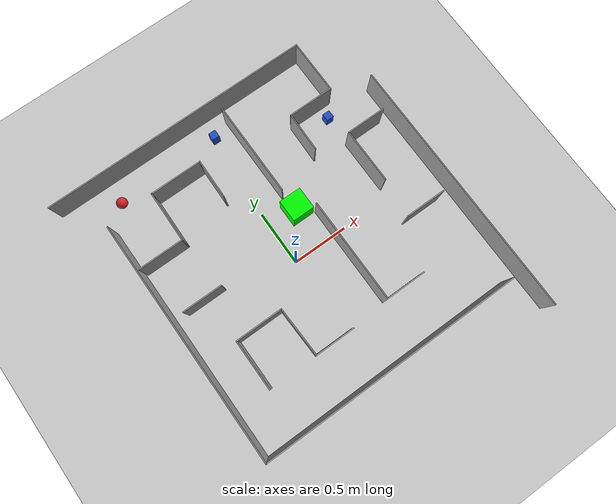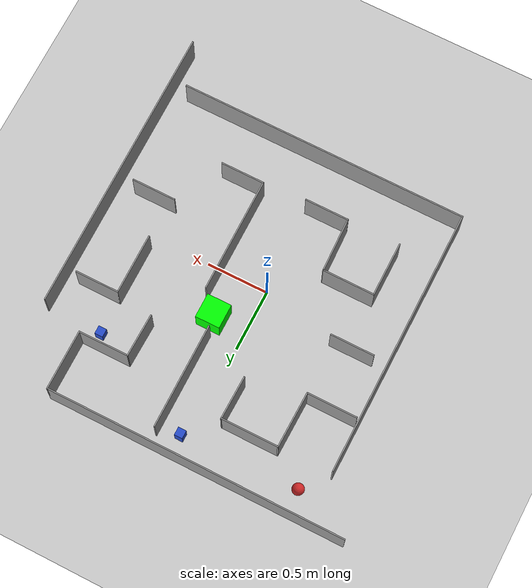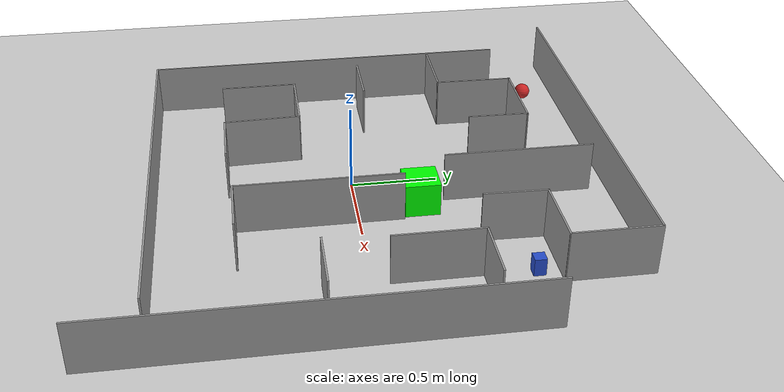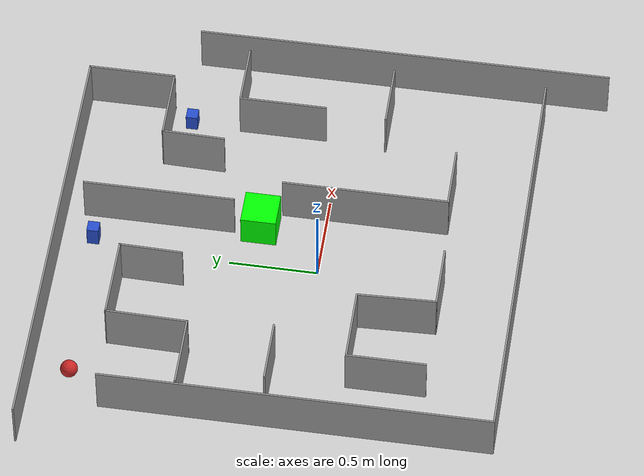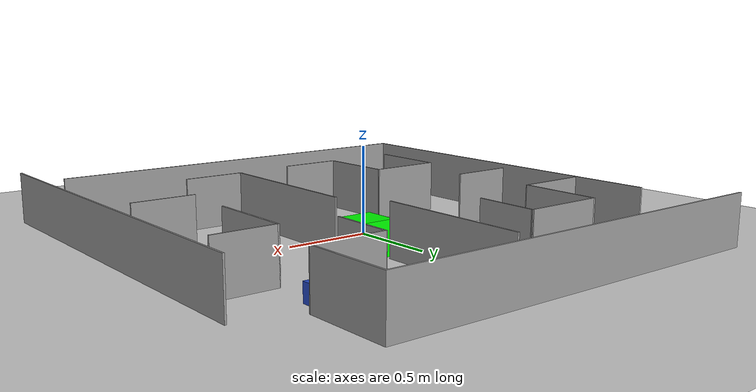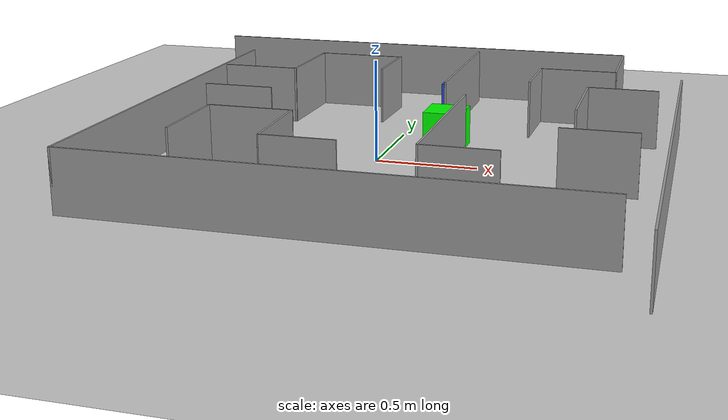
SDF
<sdf version="1.7">
 <world name="default">
  <light name="sun" type="directional">
   <pose>0 0 10 0 -0 0</pose>
   <diffuse>0.8 0.8 0.8 1</diffuse>
   <specular>0.2 0.2 0.2 1</specular>
   <attenuation>
    <range>1000</range>
    <constant>0.9</constant>
    <linear>0.01</linear>
    <quadratic>0.001</quadratic>
   </attenuation>
   <direction>-0.5 0.1 -0.9</direction>
   <spot><inner_angle>0</inner_angle><outer_angle>0</outer_angle><falloff>0</falloff></spot>
  </light>
  <model name="ground_plane">
   <static>1</static>
   <link name="link">
    <collision name="collision">
     <geometry><plane><normal>0 0 1</normal><size>100 100</size></plane></geometry>
     <surface>
      <contact><collide_bitmask>65535</collide_bitmask></contact>
      <friction><ode><mu>100</mu><mu2>50</mu2></ode></friction>
     </surface>
    </collision>
    <visual name="visual">
     <cast_shadows>0</cast_shadows>
     <geometry><plane><normal>0 0 1</normal><size>100 100</size></plane></geometry>
     <material>
      <script><uri>file://media/materials/scripts/gazebo.material</uri><name>Gazebo/Grey</name></script>
     </material>
    </visual>
   </link>
  </model>
  <gravity>0 0 -9.8</gravity>
  <magnetic_field>6e-06 2.3e-05 -4.2e-05</magnetic_field>
  <atmosphere type="adiabatic"/>
  <physics type="ode">
   <max_step_size>0.001</max_step_size>
   <real_time_factor>1</real_time_factor>
   <real_time_update_rate>1000</real_time_update_rate>
  </physics>
  <scene><ambient>0.4 0.4 0.4 1</ambient><background>0.7 0.7 0.7 1</background><shadows>1</shadows></scene>
  <audio><device>default</device></audio>
  <spherical_coordinates>
   <surface_model>EARTH_WGS84</surface_model>
   <latitude_deg>0</latitude_deg>
   <longitude_deg>0</longitude_deg>
   <elevation>0</elevation>
   <heading_deg>0</heading_deg>
  </spherical_coordinates>
  <model name="WorldTask3">
   <model name="WorldTask3">
    <link name="Wall_18">
     <pose>-0.1745 1.47 0 0 -0 0</pose>
     <visual name="Wall_18_Visual">
      <pose>0 0 0.15 0 -0 0</pose>
      <geometry><box><size>2.436 0.01 0.3</size></box></geometry>
      <material>
       <script><uri>file://media/materials/scripts/gazebo.material</uri><name>Gazebo/Grey</name></script>
       <ambient>1 1 1 1</ambient>
       <shader type="pixel"/>
      </material>
      <meta><layer>0</layer></meta>
     </visual>
     <collision name="Wall_18_Collision">
      <pose>0 0 0.15 0 -0 0</pose>
      <geometry><box><size>2.436 0.01 0.3</size></box></geometry>
      <surface>
       <friction>
        <ode><mu>1</mu><mu2>1</mu2><fdir1>0 0 0</fdir1><slip1>0</slip1><slip2>0</slip2></ode>
        <torsional>
         <coefficient>1</coefficient>
         <patch_radius>0</patch_radius>
         <surface_radius>0</surface_radius>
         <use_patch_radius>1</use_patch_radius>
         <ode><slip>0</slip></ode>
        </torsional>
       </friction>
       <bounce><restitution_coefficient>0</restitution_coefficient><threshold>1e+06</threshold></bounce>
       <contact>
        <collide_without_contact>0</collide_without_contact>
        <collide_without_contact_bitmask>1</collide_without_contact_bitmask>
        <collide_bitmask>1</collide_bitmask>
        <ode>
         <soft_cfm>0</soft_cfm>
         <soft_erp>0.2</soft_erp>
         <kp>1e+13</kp>
         <kd>1</kd>
         <max_vel>0.01</max_vel>
         <min_depth>0</min_depth>
        </ode>
        <bullet>
         <split_impulse>1</split_impulse>
         <split_impulse_penetration_threshold>-0.01</split_impulse_penetration_threshold>
         <soft_cfm>0</soft_cfm>
         <soft_erp>0.2</soft_erp>
         <kp>1e+13</kp>
         <kd>1</kd>
        </bullet>
       </contact>
      </surface>
     </collision>
    </link>
    <link name="Wall_19">
     <pose>1.0385 1.227 0 0 0 -1.5708</pose>
     <visual name="Wall_19_Visual">
      <pose>0 0 0.15 0 -0 0</pose>
      <geometry><box><size>0.496 0.01 0.3</size></box></geometry>
      <material>
       <script><uri>file://media/materials/scripts/gazebo.material</uri><name>Gazebo/Grey</name></script>
       <ambient>1 1 1 1</ambient>
       <shader type="pixel"/>
      </material>
      <meta><layer>0</layer></meta>
     </visual>
     <collision name="Wall_19_Collision">
      <pose>0 0 0.15 0 -0 0</pose>
      <geometry><box><size>0.496 0.01 0.3</size></box></geometry>
      <surface>
       <friction>
        <ode><mu>1</mu><mu2>1</mu2><fdir1>0 0 0</fdir1><slip1>0</slip1><slip2>0</slip2></ode>
        <torsional>
         <coefficient>1</coefficient>
         <patch_radius>0</patch_radius>
         <surface_radius>0</surface_radius>
         <use_patch_radius>1</use_patch_radius>
         <ode><slip>0</slip></ode>
        </torsional>
       </friction>
       <bounce><restitution_coefficient>0</restitution_coefficient><threshold>1e+06</threshold></bounce>
       <contact>
        <collide_without_contact>0</collide_without_contact>
        <collide_without_contact_bitmask>1</collide_without_contact_bitmask>
        <collide_bitmask>1</collide_bitmask>
        <ode>
         <soft_cfm>0</soft_cfm>
         <soft_erp>0.2</soft_erp>
         <kp>1e+13</kp>
         <kd>1</kd>
         <max_vel>0.01</max_vel>
         <min_depth>0</min_depth>
        </ode>
        <bullet>
         <split_impulse>1</split_impulse>
         <split_impulse_penetration_threshold>-0.01</split_impulse_penetration_threshold>
         <soft_cfm>0</soft_cfm>
         <soft_erp>0.2</soft_erp>
         <kp>1e+13</kp>
         <kd>1</kd>
        </bullet>
       </contact>
      </surface>
     </collision>
    </link>
    <link name="Wall_20">
     <pose>0.837 0.9835 0 0 0 -3.13911</pose>
     <visual name="Wall_20_Visual">
      <pose>0 0 0.15 0 -0 0</pose>
      <geometry><box><size>0.413001 0.01 0.3</size></box></geometry>
      <material>
       <script><uri>file://media/materials/scripts/gazebo.material</uri><name>Gazebo/Grey</name></script>
       <ambient>1 1 1 1</ambient>
       <shader type="pixel"/>
      </material>
      <meta><layer>0</layer></meta>
     </visual>
     <collision name="Wall_20_Collision">
      <pose>0 0 0.15 0 -0 0</pose>
      <geometry><box><size>0.413001 0.01 0.3</size></box></geometry>
      <surface>
       <friction>
        <ode><mu>1</mu><mu2>1</mu2><fdir1>0 0 0</fdir1><slip1>0</slip1><slip2>0</slip2></ode>
        <torsional>
         <coefficient>1</coefficient>
         <patch_radius>0</patch_radius>
         <surface_radius>0</surface_radius>
         <use_patch_radius>1</use_patch_radius>
         <ode><slip>0</slip></ode>
        </torsional>
       </friction>
       <bounce><restitution_coefficient>0</restitution_coefficient><threshold>1e+06</threshold></bounce>
       <contact>
        <collide_without_contact>0</collide_without_contact>
        <collide_without_contact_bitmask>1</collide_without_contact_bitmask>
        <collide_bitmask>1</collide_bitmask>
        <ode>
         <soft_cfm>0</soft_cfm>
         <soft_erp>0.2</soft_erp>
         <kp>1e+13</kp>
         <kd>1</kd>
         <max_vel>0.01</max_vel>
         <min_depth>0</min_depth>
        </ode>
        <bullet>
         <split_impulse>1</split_impulse>
         <split_impulse_penetration_threshold>-0.01</split_impulse_penetration_threshold>
         <soft_cfm>0</soft_cfm>
         <soft_erp>0.2</soft_erp>
         <kp>1e+13</kp>
         <kd>1</kd>
        </bullet>
       </contact>
      </surface>
     </collision>
    </link>
    <link name="Wall_21">
     <pose>0.6315 0.808 0 0 0 -1.59365</pose>
     <visual name="Wall_21_Visual">
      <pose>0 0 0.15 0 -0 0</pose>
      <geometry><box><size>0.360091 0.01 0.3</size></box></geometry>
      <material>
       <script><uri>file://media/materials/scripts/gazebo.material</uri><name>Gazebo/Grey</name></script>
       <ambient>1 1 1 1</ambient>
       <shader type="pixel"/>
      </material>
      <meta><layer>0</layer></meta>
     </visual>
     <collision name="Wall_21_Collision">
      <pose>0 0 0.15 0 -0 0</pose>
      <geometry><box><size>0.360091 0.01 0.3</size></box></geometry>
      <surface>
       <friction>
        <ode><mu>1</mu><mu2>1</mu2><fdir1>0 0 0</fdir1><slip1>0</slip1><slip2>0</slip2></ode>
        <torsional>
         <coefficient>1</coefficient>
         <patch_radius>0</patch_radius>
         <surface_radius>0</surface_radius>
         <use_patch_radius>1</use_patch_radius>
         <ode><slip>0</slip></ode>
        </torsional>
       </friction>
       <bounce><restitution_coefficient>0</restitution_coefficient><threshold>1e+06</threshold></bounce>
       <contact>
        <collide_without_contact>0</collide_without_contact>
        <collide_without_contact_bitmask>1</collide_without_contact_bitmask>
        <collide_bitmask>1</collide_bitmask>
        <ode>
         <soft_cfm>0</soft_cfm>
         <soft_erp>0.2</soft_erp>
         <kp>1e+13</kp>
         <kd>1</kd>
         <max_vel>0.01</max_vel>
         <min_depth>0</min_depth>
        </ode>
        <bullet>
         <split_impulse>1</split_impulse>
         <split_impulse_penetration_threshold>-0.01</split_impulse_penetration_threshold>
         <soft_cfm>0</soft_cfm>
         <soft_erp>0.2</soft_erp>
         <kp>1e+13</kp>
         <kd>1</kd>
        </bullet>
       </contact>
      </surface>
     </collision>
    </link>
    <link name="Wall_23">
     <pose>1.3875 -0.295 0 0 0 -1.5708</pose>
     <visual name="Wall_23_Visual">
      <pose>0 0 0.15 0 -0 0</pose>
      <geometry><box><size>2.36 0.01 0.3</size></box></geometry>
      <material>
       <script><uri>file://media/materials/scripts/gazebo.material</uri><name>Gazebo/Grey</name></script>
       <ambient>1 1 1 1</ambient>
       <shader type="pixel"/>
      </material>
      <meta><layer>0</layer></meta>
     </visual>
     <collision name="Wall_23_Collision">
      <pose>0 0 0.15 0 -0 0</pose>
      <geometry><box><size>2.36 0.01 0.3</size></box></geometry>
      <surface>
       <friction>
        <ode><mu>1</mu><mu2>1</mu2><fdir1>0 0 0</fdir1><slip1>0</slip1><slip2>0</slip2></ode>
        <torsional>
         <coefficient>1</coefficient>
         <patch_radius>0</patch_radius>
         <surface_radius>0</surface_radius>
         <use_patch_radius>1</use_patch_radius>
         <ode><slip>0</slip></ode>
        </torsional>
       </friction>
       <bounce><restitution_coefficient>0</restitution_coefficient><threshold>1e+06</threshold></bounce>
       <contact>
        <collide_without_contact>0</collide_without_contact>
        <collide_without_contact_bitmask>1</collide_without_contact_bitmask>
        <collide_bitmask>1</collide_bitmask>
        <ode>
         <soft_cfm>0</soft_cfm>
         <soft_erp>0.2</soft_erp>
         <kp>1e+13</kp>
         <kd>1</kd>
         <max_vel>0.01</max_vel>
         <min_depth>0</min_depth>
        </ode>
        <bullet>
         <split_impulse>1</split_impulse>
         <split_impulse_penetration_threshold>-0.01</split_impulse_penetration_threshold>
         <soft_cfm>0</soft_cfm>
         <soft_erp>0.2</soft_erp>
         <kp>1e+13</kp>
         <kd>1</kd>
        </bullet>
       </contact>
      </surface>
     </collision>
    </link>
    <link name="Wall_25">
     <pose>0.0825 -1.124 0 0 -0 0</pose>
     <visual name="Wall_25_Visual">
      <pose>0 0 0.15 0 -0 0</pose>
      <geometry><box><size>2.36 0.01 0.3</size></box></geometry>
      <material>
       <script><uri>file://media/materials/scripts/gazebo.material</uri><name>Gazebo/Grey</name></script>
       <ambient>1 1 1 1</ambient>
       <shader type="pixel"/>
      </material>
      <meta><layer>0</layer></meta>
     </visual>
     <collision name="Wall_25_Collision">
      <pose>0 0 0.15 0 -0 0</pose>
      <geometry><box><size>2.36 0.01 0.3</size></box></geometry>
      <surface>
       <friction>
        <ode><mu>1</mu><mu2>1</mu2><fdir1>0 0 0</fdir1><slip1>0</slip1><slip2>0</slip2></ode>
        <torsional>
         <coefficient>1</coefficient>
         <patch_radius>0</patch_radius>
         <surface_radius>0</surface_radius>
         <use_patch_radius>1</use_patch_radius>
         <ode><slip>0</slip></ode>
        </torsional>
       </friction>
       <bounce><restitution_coefficient>0</restitution_coefficient><threshold>1e+06</threshold></bounce>
       <contact>
        <collide_without_contact>0</collide_without_contact>
        <collide_without_contact_bitmask>1</collide_without_contact_bitmask>
        <collide_bitmask>1</collide_bitmask>
        <ode>
         <soft_cfm>0</soft_cfm>
         <soft_erp>0.2</soft_erp>
         <kp>1e+13</kp>
         <kd>1</kd>
         <max_vel>0.01</max_vel>
         <min_depth>0</min_depth>
        </ode>
        <bullet>
         <split_impulse>1</split_impulse>
         <split_impulse_penetration_threshold>-0.01</split_impulse_penetration_threshold>
         <soft_cfm>0</soft_cfm>
         <soft_erp>0.2</soft_erp>
         <kp>1e+13</kp>
         <kd>1</kd>
        </bullet>
       </contact>
      </surface>
     </collision>
    </link>
    <link name="Wall_27">
     <pose>-1.0925 -0.031 0 0 0 -1.5708</pose>
     <visual name="Wall_27_Visual">
      <pose>0 0 0.15 0 -0 0</pose>
      <geometry><box><size>2.196 0.01 0.3</size></box></geometry>
      <material>
       <script><uri>file://media/materials/scripts/gazebo.material</uri><name>Gazebo/Grey</name></script>
       <ambient>1 1 1 1</ambient>
       <shader type="pixel"/>
      </material>
      <meta><layer>0</layer></meta>
     </visual>
     <collision name="Wall_27_Collision">
      <pose>0 0 0.15 0 -0 0</pose>
      <geometry><box><size>2.196 0.01 0.3</size></box></geometry>
      <surface>
       <friction>
        <ode><mu>1</mu><mu2>1</mu2><fdir1>0 0 0</fdir1><slip1>0</slip1><slip2>0</slip2></ode>
        <torsional>
         <coefficient>1</coefficient>
         <patch_radius>0</patch_radius>
         <surface_radius>0</surface_radius>
         <use_patch_radius>1</use_patch_radius>
         <ode><slip>0</slip></ode>
        </torsional>
       </friction>
       <bounce><restitution_coefficient>0</restitution_coefficient><threshold>1e+06</threshold></bounce>
       <contact>
        <collide_without_contact>0</collide_without_contact>
        <collide_without_contact_bitmask>1</collide_without_contact_bitmask>
        <collide_bitmask>1</collide_bitmask>
        <ode>
         <soft_cfm>0</soft_cfm>
         <soft_erp>0.2</soft_erp>
         <kp>1e+13</kp>
         <kd>1</kd>
         <max_vel>0.01</max_vel>
         <min_depth>0</min_depth>
        </ode>
        <bullet>
         <split_impulse>1</split_impulse>
         <split_impulse_penetration_threshold>-0.01</split_impulse_penetration_threshold>
         <soft_cfm>0</soft_cfm>
         <soft_erp>0.2</soft_erp>
         <kp>1e+13</kp>
         <kd>1</kd>
        </bullet>
       </contact>
      </surface>
     </collision>
    </link>
    <link name="Wall_29">
     <pose>-0.8685 0.631 0 0 -0 0</pose>
     <visual name="Wall_29_Visual">
      <pose>0 0 0.15 0 -0 0</pose>
      <geometry><box><size>0.412 0.01 0.3</size></box></geometry>
      <material>
       <script><uri>file://media/materials/scripts/gazebo.material</uri><name>Gazebo/Grey</name></script>
       <ambient>1 1 1 1</ambient>
       <shader type="pixel"/>
      </material>
      <meta><layer>0</layer></meta>
     </visual>
     <collision name="Wall_29_Collision">
      <pose>0 0 0.15 0 -0 0</pose>
      <geometry><box><size>0.412 0.01 0.3</size></box></geometry>
      <surface>
       <friction>
        <ode><mu>1</mu><mu2>1</mu2><fdir1>0 0 0</fdir1><slip1>0</slip1><slip2>0</slip2></ode>
        <torsional>
         <coefficient>1</coefficient>
         <patch_radius>0</patch_radius>
         <surface_radius>0</surface_radius>
         <use_patch_radius>1</use_patch_radius>
         <ode><slip>0</slip></ode>
        </torsional>
       </friction>
       <bounce><restitution_coefficient>0</restitution_coefficient><threshold>1e+06</threshold></bounce>
       <contact>
        <collide_without_contact>0</collide_without_contact>
        <collide_without_contact_bitmask>1</collide_without_contact_bitmask>
        <collide_bitmask>1</collide_bitmask>
        <ode>
         <soft_cfm>0</soft_cfm>
         <soft_erp>0.2</soft_erp>
         <kp>1e+13</kp>
         <kd>1</kd>
         <max_vel>0.01</max_vel>
         <min_depth>0</min_depth>
        </ode>
        <bullet>
         <split_impulse>1</split_impulse>
         <split_impulse_penetration_threshold>-0.01</split_impulse_penetration_threshold>
         <soft_cfm>0</soft_cfm>
         <soft_erp>0.2</soft_erp>
         <kp>1e+13</kp>
         <kd>1</kd>
        </bullet>
       </contact>
      </surface>
     </collision>
    </link>
    <link name="Wall_33">
     <pose>-0.6635 0.859 0 0 0 -1.58834</pose>
     <visual name="Wall_33_Visual">
      <pose>0 0 0.15 0 -0 0</pose>
      <geometry><box><size>0.466265 0.01 0.3</size></box></geometry>
      <material>
       <script><uri>file://media/materials/scripts/gazebo.material</uri><name>Gazebo/Grey</name></script>
       <ambient>1 1 1 1</ambient>
       <shader type="pixel"/>
      </material>
      <meta><layer>0</layer></meta>
     </visual>
     <collision name="Wall_33_Collision">
      <pose>0 0 0.15 0 -0 0</pose>
      <geometry><box><size>0.466265 0.01 0.3</size></box></geometry>
      <surface>
       <friction>
        <ode><mu>1</mu><mu2>1</mu2><fdir1>0 0 0</fdir1><slip1>0</slip1><slip2>0</slip2></ode>
        <torsional>
         <coefficient>1</coefficient>
         <patch_radius>0</patch_radius>
         <surface_radius>0</surface_radius>
         <use_patch_radius>1</use_patch_radius>
         <ode><slip>0</slip></ode>
        </torsional>
       </friction>
       <bounce><restitution_coefficient>0</restitution_coefficient><threshold>1e+06</threshold></bounce>
       <contact>
        <collide_without_contact>0</collide_without_contact>
        <collide_without_contact_bitmask>1</collide_without_contact_bitmask>
        <collide_bitmask>1</collide_bitmask>
        <ode>
         <soft_cfm>0</soft_cfm>
         <soft_erp>0.2</soft_erp>
         <kp>1e+13</kp>
         <kd>1</kd>
         <max_vel>0.01</max_vel>
         <min_depth>0</min_depth>
        </ode>
        <bullet>
         <split_impulse>1</split_impulse>
         <split_impulse_penetration_threshold>-0.01</split_impulse_penetration_threshold>
         <soft_cfm>0</soft_cfm>
         <soft_erp>0.2</soft_erp>
         <kp>1e+13</kp>
         <kd>1</kd>
        </bullet>
       </contact>
      </surface>
     </collision>
    </link>
    <link name="Wall_36">
     <pose>-0.428 1.087 0 0 -0 3.14159</pose>
     <visual name="Wall_36_Visual">
      <pose>0 0 0.15 0 -0 0</pose>
      <geometry><box><size>0.473 0.01 0.3</size></box></geometry>
      <material>
       <script><uri>file://media/materials/scripts/gazebo.material</uri><name>Gazebo/Grey</name></script>
       <ambient>1 1 1 1</ambient>
       <shader type="pixel"/>
      </material>
      <meta><layer>0</layer></meta>
     </visual>
     <collision name="Wall_36_Collision">
      <pose>0 0 0.15 0 -0 0</pose>
      <geometry><box><size>0.473 0.01 0.3</size></box></geometry>
      <surface>
       <friction>
        <ode><mu>1</mu><mu2>1</mu2><fdir1>0 0 0</fdir1><slip1>0</slip1><slip2>0</slip2></ode>
        <torsional>
         <coefficient>1</coefficient>
         <patch_radius>0</patch_radius>
         <surface_radius>0</surface_radius>
         <use_patch_radius>1</use_patch_radius>
         <ode><slip>0</slip></ode>
        </torsional>
       </friction>
       <bounce><restitution_coefficient>0</restitution_coefficient><threshold>1e+06</threshold></bounce>
       <contact>
        <collide_without_contact>0</collide_without_contact>
        <collide_without_contact_bitmask>1</collide_without_contact_bitmask>
        <collide_bitmask>1</collide_bitmask>
        <ode>
         <soft_cfm>0</soft_cfm>
         <soft_erp>0.2</soft_erp>
         <kp>1e+13</kp>
         <kd>1</kd>
         <max_vel>0.01</max_vel>
         <min_depth>0</min_depth>
        </ode>
        <bullet>
         <split_impulse>1</split_impulse>
         <split_impulse_penetration_threshold>-0.01</split_impulse_penetration_threshold>
         <soft_cfm>0</soft_cfm>
         <soft_erp>0.2</soft_erp>
         <kp>1e+13</kp>
         <kd>1</kd>
        </bullet>
       </contact>
      </surface>
     </collision>
    </link>
    <link name="Wall_38">
     <pose>-0.2 0.912 0 0 0 -1.59079</pose>
     <visual name="Wall_38_Visual">
      <pose>0 0 0.15 0 -0 0</pose>
      <geometry><box><size>0.36007 0.01 0.3</size></box></geometry>
      <material>
       <script><uri>file://media/materials/scripts/gazebo.material</uri><name>Gazebo/Grey</name></script>
       <ambient>1 1 1 1</ambient>
       <shader type="pixel"/>
      </material>
      <meta><layer>0</layer></meta>
     </visual>
     <collision name="Wall_38_Collision">
      <pose>0 0 0.15 0 -0 0</pose>
      <geometry><box><size>0.36007 0.01 0.3</size></box></geometry>
      <surface>
       <friction>
        <ode><mu>1</mu><mu2>1</mu2><fdir1>0 0 0</fdir1><slip1>0</slip1><slip2>0</slip2></ode>
        <torsional>
         <coefficient>1</coefficient>
         <patch_radius>0</patch_radius>
         <surface_radius>0</surface_radius>
         <use_patch_radius>1</use_patch_radius>
         <ode><slip>0</slip></ode>
        </torsional>
       </friction>
       <bounce><restitution_coefficient>0</restitution_coefficient><threshold>1e+06</threshold></bounce>
       <contact>
        <collide_without_contact>0</collide_without_contact>
        <collide_without_contact_bitmask>1</collide_without_contact_bitmask>
        <collide_bitmask>1</collide_bitmask>
        <ode>
         <soft_cfm>0</soft_cfm>
         <soft_erp>0.2</soft_erp>
         <kp>1e+13</kp>
         <kd>1</kd>
         <max_vel>0.01</max_vel>
         <min_depth>0</min_depth>
        </ode>
        <bullet>
         <split_impulse>1</split_impulse>
         <split_impulse_penetration_threshold>-0.01</split_impulse_penetration_threshold>
         <soft_cfm>0</soft_cfm>
         <soft_erp>0.2</soft_erp>
         <kp>1e+13</kp>
         <kd>1</kd>
        </bullet>
       </contact>
      </surface>
     </collision>
    </link>
    <link name="Wall_40">
     <pose>-0.7985 0.154 0 0 -0 3.14159</pose>
     <visual name="Wall_40_Visual">
      <pose>0 0 0.15 0 -0 0</pose>
      <geometry><box><size>0.36 0.01 0.3</size></box></geometry>
      <material>
       <script><uri>file://media/materials/scripts/gazebo.material</uri><name>Gazebo/Grey</name></script>
       <ambient>1 1 1 1</ambient>
       <shader type="pixel"/>
      </material>
      <meta><layer>0</layer></meta>
     </visual>
     <collision name="Wall_40_Collision">
      <pose>0 0 0.15 0 -0 0</pose>
      <geometry><box><size>0.36 0.01 0.3</size></box></geometry>
      <surface>
       <friction>
        <ode><mu>1</mu><mu2>1</mu2><fdir1>0 0 0</fdir1><slip1>0</slip1><slip2>0</slip2></ode>
        <torsional>
         <coefficient>1</coefficient>
         <patch_radius>0</patch_radius>
         <surface_radius>0</surface_radius>
         <use_patch_radius>1</use_patch_radius>
         <ode><slip>0</slip></ode>
        </torsional>
       </friction>
       <bounce><restitution_coefficient>0</restitution_coefficient><threshold>1e+06</threshold></bounce>
       <contact>
        <collide_without_contact>0</collide_without_contact>
        <collide_without_contact_bitmask>1</collide_without_contact_bitmask>
        <collide_bitmask>1</collide_bitmask>
        <ode>
         <soft_cfm>0</soft_cfm>
         <soft_erp>0.2</soft_erp>
         <kp>1e+13</kp>
         <kd>1</kd>
         <max_vel>0.01</max_vel>
         <min_depth>0</min_depth>
        </ode>
        <bullet>
         <split_impulse>1</split_impulse>
         <split_impulse_penetration_threshold>-0.01</split_impulse_penetration_threshold>
         <soft_cfm>0</soft_cfm>
         <soft_erp>0.2</soft_erp>
         <kp>1e+13</kp>
         <kd>1</kd>
        </bullet>
       </contact>
      </surface>
     </collision>
    </link>
    <link name="Wall_42">
     <pose>-0.7675 -0.4875 0 0 -0 1.5708</pose>
     <visual name="Wall_42_Visual">
      <pose>0 0 0.15 0 -0 0</pose>
      <geometry><box><size>0.451 0.01 0.3</size></box></geometry>
      <material>
       <script><uri>file://media/materials/scripts/gazebo.material</uri><name>Gazebo/Grey</name></script>
       <ambient>1 1 1 1</ambient>
       <shader type="pixel"/>
      </material>
      <meta><layer>0</layer></meta>
     </visual>
     <collision name="Wall_42_Collision">
      <pose>0 0 0.15 0 -0 0</pose>
      <geometry><box><size>0.451 0.01 0.3</size></box></geometry>
      <surface>
       <friction>
        <ode><mu>1</mu><mu2>1</mu2><fdir1>0 0 0</fdir1><slip1>0</slip1><slip2>0</slip2></ode>
        <torsional>
         <coefficient>1</coefficient>
         <patch_radius>0</patch_radius>
         <surface_radius>0</surface_radius>
         <use_patch_radius>1</use_patch_radius>
         <ode><slip>0</slip></ode>
        </torsional>
       </friction>
       <bounce><restitution_coefficient>0</restitution_coefficient><threshold>1e+06</threshold></bounce>
       <contact>
        <collide_without_contact>0</collide_without_contact>
        <collide_without_contact_bitmask>1</collide_without_contact_bitmask>
        <collide_bitmask>1</collide_bitmask>
        <ode>
         <soft_cfm>0</soft_cfm>
         <soft_erp>0.2</soft_erp>
         <kp>1e+13</kp>
         <kd>1</kd>
         <max_vel>0.01</max_vel>
         <min_depth>0</min_depth>
        </ode>
        <bullet>
         <split_impulse>1</split_impulse>
         <split_impulse_penetration_threshold>-0.01</split_impulse_penetration_threshold>
         <soft_cfm>0</soft_cfm>
         <soft_erp>0.2</soft_erp>
         <kp>1e+13</kp>
         <kd>1</kd>
        </bullet>
       </contact>
      </surface>
     </collision>
    </link>
    <link name="Wall_44">
     <pose>-0.5585 -0.267 0 0 -0 3.14159</pose>
     <visual name="Wall_44_Visual">
      <pose>0 0 0.15 0 -0 0</pose>
      <geometry><box><size>0.428 0.01 0.3</size></box></geometry>
      <material>
       <script><uri>file://media/materials/scripts/gazebo.material</uri><name>Gazebo/Grey</name></script>
       <ambient>1 1 1 1</ambient>
       <shader type="pixel"/>
      </material>
      <meta><layer>0</layer></meta>
     </visual>
     <collision name="Wall_44_Collision">
      <pose>0 0 0.15 0 -0 0</pose>
      <geometry><box><size>0.428 0.01 0.3</size></box></geometry>
      <surface>
       <friction>
        <ode><mu>1</mu><mu2>1</mu2><fdir1>0 0 0</fdir1><slip1>0</slip1><slip2>0</slip2></ode>
        <torsional>
         <coefficient>1</coefficient>
         <patch_radius>0</patch_radius>
         <surface_radius>0</surface_radius>
         <use_patch_radius>1</use_patch_radius>
         <ode><slip>0</slip></ode>
        </torsional>
       </friction>
       <bounce><restitution_coefficient>0</restitution_coefficient><threshold>1e+06</threshold></bounce>
       <contact>
        <collide_without_contact>0</collide_without_contact>
        <collide_without_contact_bitmask>1</collide_without_contact_bitmask>
        <collide_bitmask>1</collide_bitmask>
        <ode>
         <soft_cfm>0</soft_cfm>
         <soft_erp>0.2</soft_erp>
         <kp>1e+13</kp>
         <kd>1</kd>
         <max_vel>0.01</max_vel>
         <min_depth>0</min_depth>
        </ode>
        <bullet>
         <split_impulse>1</split_impulse>
         <split_impulse_penetration_threshold>-0.01</split_impulse_penetration_threshold>
         <soft_cfm>0</soft_cfm>
         <soft_erp>0.2</soft_erp>
         <kp>1e+13</kp>
         <kd>1</kd>
        </bullet>
       </contact>
      </surface>
     </collision>
    </link>
    <link name="Wall_46">
     <pose>-0.342 -0.4875 0 0 -0 1.6048</pose>
     <visual name="Wall_46_Visual">
      <pose>0 0 0.15 0 -0 0</pose>
      <geometry><box><size>0.451255 0.01 0.3</size></box></geometry>
      <material>
       <script><uri>file://media/materials/scripts/gazebo.material</uri><name>Gazebo/Grey</name></script>
       <ambient>1 1 1 1</ambient>
       <shader type="pixel"/>
      </material>
      <meta><layer>0</layer></meta>
     </visual>
     <collision name="Wall_46_Collision">
      <pose>0 0 0.15 0 -0 0</pose>
      <geometry><box><size>0.451255 0.01 0.3</size></box></geometry>
      <surface>
       <friction>
        <ode><mu>1</mu><mu2>1</mu2><fdir1>0 0 0</fdir1><slip1>0</slip1><slip2>0</slip2></ode>
        <torsional>
         <coefficient>1</coefficient>
         <patch_radius>0</patch_radius>
         <surface_radius>0</surface_radius>
         <use_patch_radius>1</use_patch_radius>
         <ode><slip>0</slip></ode>
        </torsional>
       </friction>
       <bounce><restitution_coefficient>0</restitution_coefficient><threshold>1e+06</threshold></bounce>
       <contact>
        <collide_without_contact>0</collide_without_contact>
        <collide_without_contact_bitmask>1</collide_without_contact_bitmask>
        <collide_bitmask>1</collide_bitmask>
        <ode>
         <soft_cfm>0</soft_cfm>
         <soft_erp>0.2</soft_erp>
         <kp>1e+13</kp>
         <kd>1</kd>
         <max_vel>0.01</max_vel>
         <min_depth>0</min_depth>
        </ode>
        <bullet>
         <split_impulse>1</split_impulse>
         <split_impulse_penetration_threshold>-0.01</split_impulse_penetration_threshold>
         <soft_cfm>0</soft_cfm>
         <soft_erp>0.2</soft_erp>
         <kp>1e+13</kp>
         <kd>1</kd>
        </bullet>
       </contact>
      </surface>
     </collision>
    </link>
    <link name="Wall_48">
     <pose>-0.1595 -0.708 0 0 -0 3.14159</pose>
     <visual name="Wall_48_Visual">
      <pose>0 0 0.15 0 -0 0</pose>
      <geometry><box><size>0.36 0.01 0.3</size></box></geometry>
      <material>
       <script><uri>file://media/materials/scripts/gazebo.material</uri><name>Gazebo/Grey</name></script>
       <ambient>1 1 1 1</ambient>
       <shader type="pixel"/>
      </material>
      <meta><layer>0</layer></meta>
     </visual>
     <collision name="Wall_48_Collision">
      <pose>0 0 0.15 0 -0 0</pose>
      <geometry><box><size>0.36 0.01 0.3</size></box></geometry>
      <surface>
       <friction>
        <ode><mu>1</mu><mu2>1</mu2><fdir1>0 0 0</fdir1><slip1>0</slip1><slip2>0</slip2></ode>
        <torsional>
         <coefficient>1</coefficient>
         <patch_radius>0</patch_radius>
         <surface_radius>0</surface_radius>
         <use_patch_radius>1</use_patch_radius>
         <ode><slip>0</slip></ode>
        </torsional>
       </friction>
       <bounce><restitution_coefficient>0</restitution_coefficient><threshold>1e+06</threshold></bounce>
       <contact>
        <collide_without_contact>0</collide_without_contact>
        <collide_without_contact_bitmask>1</collide_without_contact_bitmask>
        <collide_bitmask>1</collide_bitmask>
        <ode>
         <soft_cfm>0</soft_cfm>
         <soft_erp>0.2</soft_erp>
         <kp>1e+13</kp>
         <kd>1</kd>
         <max_vel>0.01</max_vel>
         <min_depth>0</min_depth>
        </ode>
        <bullet>
         <split_impulse>1</split_impulse>
         <split_impulse_penetration_threshold>-0.01</split_impulse_penetration_threshold>
         <soft_cfm>0</soft_cfm>
         <soft_erp>0.2</soft_erp>
         <kp>1e+13</kp>
         <kd>1</kd>
        </bullet>
       </contact>
      </surface>
     </collision>
    </link>
    <link name="Wall_50">
     <pose>0.2075 0.935 0 0 -0 1.5708</pose>
     <visual name="Wall_50_Visual">
      <pose>0 0 0.15 0 -0 0</pose>
      <geometry><box><size>0.86 0.01 0.3</size></box></geometry>
      <material>
       <script><uri>file://media/materials/scripts/gazebo.material</uri><name>Gazebo/Grey</name></script>
       <ambient>1 1 1 1</ambient>
       <shader type="pixel"/>
      </material>
      <meta><layer>0</layer></meta>
     </visual>
     <collision name="Wall_50_Collision">
      <pose>0 0 0.15 0 -0 0</pose>
      <geometry><box><size>0.86 0.01 0.3</size></box></geometry>
      <surface>
       <friction>
        <ode><mu>1</mu><mu2>1</mu2><fdir1>0 0 0</fdir1><slip1>0</slip1><slip2>0</slip2></ode>
        <torsional>
         <coefficient>1</coefficient>
         <patch_radius>0</patch_radius>
         <surface_radius>0</surface_radius>
         <use_patch_radius>1</use_patch_radius>
         <ode><slip>0</slip></ode>
        </torsional>
       </friction>
       <bounce><restitution_coefficient>0</restitution_coefficient><threshold>1e+06</threshold></bounce>
       <contact>
        <collide_without_contact>0</collide_without_contact>
        <collide_without_contact_bitmask>1</collide_without_contact_bitmask>
        <collide_bitmask>1</collide_bitmask>
        <ode>
         <soft_cfm>0</soft_cfm>
         <soft_erp>0.2</soft_erp>
         <kp>1e+13</kp>
         <kd>1</kd>
         <max_vel>0.01</max_vel>
         <min_depth>0</min_depth>
        </ode>
        <bullet>
         <split_impulse>1</split_impulse>
         <split_impulse_penetration_threshold>-0.01</split_impulse_penetration_threshold>
         <soft_cfm>0</soft_cfm>
         <soft_erp>0.2</soft_erp>
         <kp>1e+13</kp>
         <kd>1</kd>
        </bullet>
       </contact>
      </surface>
     </collision>
    </link>
    <link name="Wall_52">
     <pose>0.3665 -0.214 0 0 0 -1.5708</pose>
     <visual name="Wall_52_Visual">
      <pose>0 0 0.15 0 -0 0</pose>
      <geometry><box><size>0.944 0.01 0.3</size></box></geometry>
      <material>
       <script><uri>file://media/materials/scripts/gazebo.material</uri><name>Gazebo/Grey</name></script>
       <ambient>1 1 1 1</ambient>
       <shader type="pixel"/>
      </material>
      <meta><layer>0</layer></meta>
     </visual>
     <collision name="Wall_52_Collision">
      <pose>0 0 0.15 0 -0 0</pose>
      <geometry><box><size>0.944 0.01 0.3</size></box></geometry>
      <surface>
       <friction>
        <ode><mu>1</mu><mu2>1</mu2><fdir1>0 0 0</fdir1><slip1>0</slip1><slip2>0</slip2></ode>
        <torsional>
         <coefficient>1</coefficient>
         <patch_radius>0</patch_radius>
         <surface_radius>0</surface_radius>
         <use_patch_radius>1</use_patch_radius>
         <ode><slip>0</slip></ode>
        </torsional>
       </friction>
       <bounce><restitution_coefficient>0</restitution_coefficient><threshold>1e+06</threshold></bounce>
       <contact>
        <collide_without_contact>0</collide_without_contact>
        <collide_without_contact_bitmask>1</collide_without_contact_bitmask>
        <collide_bitmask>1</collide_bitmask>
        <ode>
         <soft_cfm>0</soft_cfm>
         <soft_erp>0.2</soft_erp>
         <kp>1e+13</kp>
         <kd>1</kd>
         <max_vel>0.01</max_vel>
         <min_depth>0</min_depth>
        </ode>
        <bullet>
         <split_impulse>1</split_impulse>
         <split_impulse_penetration_threshold>-0.01</split_impulse_penetration_threshold>
         <soft_cfm>0</soft_cfm>
         <soft_erp>0.2</soft_erp>
         <kp>1e+13</kp>
         <kd>1</kd>
        </bullet>
       </contact>
      </surface>
     </collision>
    </link>
    <link name="Wall_54">
     <pose>0.5415 -0.681 0 0 -0 3.14159</pose>
     <visual name="Wall_54_Visual">
      <pose>0 0 0.15 0 -0 0</pose>
      <geometry><box><size>0.36 0.01 0.3</size></box></geometry>
      <material>
       <script><uri>file://media/materials/scripts/gazebo.material</uri><name>Gazebo/Grey</name></script>
       <ambient>1 1 1 1</ambient>
       <shader type="pixel"/>
      </material>
      <meta><layer>0</layer></meta>
     </visual>
     <collision name="Wall_54_Collision">
      <pose>0 0 0.15 0 -0 0</pose>
      <geometry><box><size>0.36 0.01 0.3</size></box></geometry>
      <surface>
       <friction>
        <ode><mu>1</mu><mu2>1</mu2><fdir1>0 0 0</fdir1><slip1>0</slip1><slip2>0</slip2></ode>
        <torsional>
         <coefficient>1</coefficient>
         <patch_radius>0</patch_radius>
         <surface_radius>0</surface_radius>
         <use_patch_radius>1</use_patch_radius>
         <ode><slip>0</slip></ode>
        </torsional>
       </friction>
       <bounce><restitution_coefficient>0</restitution_coefficient><threshold>1e+06</threshold></bounce>
       <contact>
        <collide_without_contact>0</collide_without_contact>
        <collide_without_contact_bitmask>1</collide_without_contact_bitmask>
        <collide_bitmask>1</collide_bitmask>
        <ode>
         <soft_cfm>0</soft_cfm>
         <soft_erp>0.2</soft_erp>
         <kp>1e+13</kp>
         <kd>1</kd>
         <max_vel>0.01</max_vel>
         <min_depth>0</min_depth>
        </ode>
        <bullet>
         <split_impulse>1</split_impulse>
         <split_impulse_penetration_threshold>-0.01</split_impulse_penetration_threshold>
         <soft_cfm>0</soft_cfm>
         <soft_erp>0.2</soft_erp>
         <kp>1e+13</kp>
         <kd>1</kd>
        </bullet>
       </contact>
      </surface>
     </collision>
    </link>
    <link name="Wall_56">
     <pose>1.0785 -0.254 0 0 -0 0</pose>
     <visual name="Wall_56_Visual">
      <pose>0 0 0.15 0 -0 0</pose>
      <geometry><box><size>0.36 0.01 0.3</size></box></geometry>
      <material>
       <script><uri>file://media/materials/scripts/gazebo.material</uri><name>Gazebo/Grey</name></script>
       <ambient>1 1 1 1</ambient>
       <shader type="pixel"/>
      </material>
      <meta><layer>0</layer></meta>
     </visual>
     <collision name="Wall_56_Collision">
      <pose>0 0 0.15 0 -0 0</pose>
      <geometry><box><size>0.36 0.01 0.3</size></box></geometry>
      <surface>
       <friction>
        <ode><mu>1</mu><mu2>1</mu2><fdir1>0 0 0</fdir1><slip1>0</slip1><slip2>0</slip2></ode>
        <torsional>
         <coefficient>1</coefficient>
         <patch_radius>0</patch_radius>
         <surface_radius>0</surface_radius>
         <use_patch_radius>1</use_patch_radius>
         <ode><slip>0</slip></ode>
        </torsional>
       </friction>
       <bounce><restitution_coefficient>0</restitution_coefficient><threshold>1e+06</threshold></bounce>
       <contact>
        <collide_without_contact>0</collide_without_contact>
        <collide_without_contact_bitmask>1</collide_without_contact_bitmask>
        <collide_bitmask>1</collide_bitmask>
        <ode>
         <soft_cfm>0</soft_cfm>
         <soft_erp>0.2</soft_erp>
         <kp>1e+13</kp>
         <kd>1</kd>
         <max_vel>0.01</max_vel>
         <min_depth>0</min_depth>
        </ode>
        <bullet>
         <split_impulse>1</split_impulse>
         <split_impulse_penetration_threshold>-0.01</split_impulse_penetration_threshold>
         <soft_cfm>0</soft_cfm>
         <soft_erp>0.2</soft_erp>
         <kp>1e+13</kp>
         <kd>1</kd>
        </bullet>
       </contact>
      </surface>
     </collision>
    </link>
    <link name="Wall_59">
     <pose>1.1085 0.585 0 0 -0 0</pose>
     <visual name="Wall_59_Visual">
      <pose>0 0 0.15 0 -0 0</pose>
      <geometry><box><size>0.36 0.01 0.3</size></box></geometry>
      <material>
       <script><uri>file://media/materials/scripts/gazebo.material</uri><name>Gazebo/Grey</name></script>
       <ambient>1 1 1 1</ambient>
       <shader type="pixel"/>
      </material>
      <meta><layer>0</layer></meta>
     </visual>
     <collision name="Wall_59_Collision">
      <pose>0 0 0.15 0 -0 0</pose>
      <geometry><box><size>0.36 0.01 0.3</size></box></geometry>
      <surface>
       <friction>
        <ode><mu>1</mu><mu2>1</mu2><fdir1>0 0 0</fdir1><slip1>0</slip1><slip2>0</slip2></ode>
        <torsional>
         <coefficient>1</coefficient>
         <patch_radius>0</patch_radius>
         <surface_radius>0</surface_radius>
         <use_patch_radius>1</use_patch_radius>
         <ode><slip>0</slip></ode>
        </torsional>
       </friction>
       <bounce><restitution_coefficient>0</restitution_coefficient><threshold>1e+06</threshold></bounce>
       <contact>
        <collide_without_contact>0</collide_without_contact>
        <collide_without_contact_bitmask>1</collide_without_contact_bitmask>
        <collide_bitmask>1</collide_bitmask>
        <ode>
         <soft_cfm>0</soft_cfm>
         <soft_erp>0.2</soft_erp>
         <kp>1e+13</kp>
         <kd>1</kd>
         <max_vel>0.01</max_vel>
         <min_depth>0</min_depth>
        </ode>
        <bullet>
         <split_impulse>1</split_impulse>
         <split_impulse_penetration_threshold>-0.01</split_impulse_penetration_threshold>
         <soft_cfm>0</soft_cfm>
         <soft_erp>0.2</soft_erp>
         <kp>1e+13</kp>
         <kd>1</kd>
        </bullet>
       </contact>
      </surface>
     </collision>
    </link>
    <link name="Wall_61">
     <pose>0.9335 0.3395 0 0 -0 1.5708</pose>
     <visual name="Wall_61_Visual">
      <pose>0 0 0.15 0 -0 0</pose>
      <geometry><box><size>0.501 0.01 0.3</size></box></geometry>
      <material>
       <script><uri>file://media/materials/scripts/gazebo.material</uri><name>Gazebo/Grey</name></script>
       <ambient>1 1 1 1</ambient>
       <shader type="pixel"/>
      </material>
      <meta><layer>0</layer></meta>
     </visual>
     <collision name="Wall_61_Collision">
      <pose>0 0 0.15 0 -0 0</pose>
      <geometry><box><size>0.501 0.01 0.3</size></box></geometry>
      <surface>
       <friction>
        <ode><mu>1</mu><mu2>1</mu2><fdir1>0 0 0</fdir1><slip1>0</slip1><slip2>0</slip2></ode>
        <torsional>
         <coefficient>1</coefficient>
         <patch_radius>0</patch_radius>
         <surface_radius>0</surface_radius>
         <use_patch_radius>1</use_patch_radius>
         <ode><slip>0</slip></ode>
        </torsional>
       </friction>
       <bounce><restitution_coefficient>0</restitution_coefficient><threshold>1e+06</threshold></bounce>
       <contact>
        <collide_without_contact>0</collide_without_contact>
        <collide_without_contact_bitmask>1</collide_without_contact_bitmask>
        <collide_bitmask>1</collide_bitmask>
        <ode>
         <soft_cfm>0</soft_cfm>
         <soft_erp>0.2</soft_erp>
         <kp>1e+13</kp>
         <kd>1</kd>
         <max_vel>0.01</max_vel>
         <min_depth>0</min_depth>
        </ode>
        <bullet>
         <split_impulse>1</split_impulse>
         <split_impulse_penetration_threshold>-0.01</split_impulse_penetration_threshold>
         <soft_cfm>0</soft_cfm>
         <soft_erp>0.2</soft_erp>
         <kp>1e+13</kp>
         <kd>1</kd>
        </bullet>
       </contact>
      </surface>
     </collision>
    </link>
    <link name="link_0">
     <inertial>
      <mass>0.00389376</mass>
      <inertia>
       <ixx>9.63586e-06</ixx>
       <ixy>0</ixy>
       <ixz>0</ixz>
       <iyy>9.63586e-06</iyy>
       <iyz>0</iyz>
       <izz>9.63586e-06</izz>
      </inertia>
     </inertial>
     <pose>-0.913358 1.25404 0.064873 0 -0 0</pose>
     <visual name="visual">
      <geometry><sphere><radius>0.0486558</radius></sphere></geometry>
      <material>
       <lighting>1</lighting>
       <script><uri>file://media/materials/scripts/gazebo.material</uri><name>Gazebo/Red</name></script>
       <shader type="pixel"/>
      </material>
     </visual>
     <collision name="collision">
      <geometry><sphere><radius>0.048656</radius></sphere></geometry>
      <surface>
       <friction>
        <ode><mu>1</mu><mu2>1</mu2><fdir1>0 0 0</fdir1><slip1>0</slip1><slip2>0</slip2></ode>
        <torsional>
         <coefficient>1</coefficient>
         <patch_radius>0</patch_radius>
         <surface_radius>0</surface_radius>
         <use_patch_radius>1</use_patch_radius>
         <ode><slip>0</slip></ode>
        </torsional>
       </friction>
       <bounce><restitution_coefficient>0</restitution_coefficient><threshold>1e+06</threshold></bounce>
       <contact>
        <collide_without_contact>0</collide_without_contact>
        <collide_without_contact_bitmask>1</collide_without_contact_bitmask>
        <collide_bitmask>1</collide_bitmask>
        <ode>
         <soft_cfm>0</soft_cfm>
         <soft_erp>0.2</soft_erp>
         <kp>1e+13</kp>
         <kd>1</kd>
         <max_vel>0.01</max_vel>
         <min_depth>0</min_depth>
        </ode>
        <bullet>
         <split_impulse>1</split_impulse>
         <split_impulse_penetration_threshold>-0.01</split_impulse_penetration_threshold>
         <soft_cfm>0</soft_cfm>
         <soft_erp>0.2</soft_erp>
         <kp>1e+13</kp>
         <kd>1</kd>
        </bullet>
       </contact>
      </surface>
     </collision>
    </link>
    <link name="link_1">
     <inertial>
      <mass>0.000938358</mass>
      <inertia>
       <ixx>2.67879e-06</ixx>
       <ixy>0</ixy>
       <ixz>0</ixz>
       <iyy>2.4364e-06</iyy>
       <iyz>0</iyz>
       <izz>9.31526e-07</izz>
      </inertia>
     </inertial>
     <pose>0.043534 1.28497 0.033843 0 -0 0</pose>
     <visual name="visual">
      <geometry><box><size>0.066381 0.066639 0.163557</size></box></geometry>
      <material>
       <lighting>1</lighting>
       <script><uri>file://media/materials/scripts/gazebo.material</uri><name>Gazebo/Blue</name></script>
       <shader type="pixel"/>
      </material>
     </visual>
     <collision name="collision">
      <geometry><box><size>0.066381 0.066639 0.163557</size></box></geometry>
      <surface>
       <friction>
        <ode><mu>1</mu><mu2>1</mu2><fdir1>0 0 0</fdir1><slip1>0</slip1><slip2>0</slip2></ode>
        <torsional>
         <coefficient>1</coefficient>
         <patch_radius>0</patch_radius>
         <surface_radius>0</surface_radius>
         <use_patch_radius>1</use_patch_radius>
         <ode><slip>0</slip></ode>
        </torsional>
       </friction>
       <bounce><restitution_coefficient>0</restitution_coefficient><threshold>1e+06</threshold></bounce>
       <contact>
        <collide_without_contact>0</collide_without_contact>
        <collide_without_contact_bitmask>1</collide_without_contact_bitmask>
        <collide_bitmask>1</collide_bitmask>
        <ode>
         <soft_cfm>0</soft_cfm>
         <soft_erp>0.2</soft_erp>
         <kp>1e+13</kp>
         <kd>1</kd>
         <max_vel>0.01</max_vel>
         <min_depth>0</min_depth>
        </ode>
        <bullet>
         <split_impulse>1</split_impulse>
         <split_impulse_penetration_threshold>-0.01</split_impulse_penetration_threshold>
         <soft_cfm>0</soft_cfm>
         <soft_erp>0.2</soft_erp>
         <kp>1e+13</kp>
         <kd>1</kd>
        </bullet>
       </contact>
      </surface>
     </collision>
    </link>
    <link name="link_1_clone">
     <inertial>
      <mass>0.000729565</mass>
      <inertia>
       <ixx>1.43878e-06</ixx>
       <ixy>0</ixy>
       <ixz>0</ixz>
       <iyy>1.25032e-06</iyy>
       <iyz>0</iyz>
       <izz>7.24261e-07</izz>
      </inertia>
     </inertial>
     <pose>0.941511 0.866636 0.034479 0 -0 0</pose>
     <visual name="visual">
      <geometry><box><size>0.066381 0.066639 0.127118</size></box></geometry>
      <material>
       <lighting>1</lighting>
       <script><uri>file://media/materials/scripts/gazebo.material</uri><name>Gazebo/Blue</name></script>
       <shader type="pixel"/>
      </material>
     </visual>
     <collision name="collision">
      <geometry><box><size>0.066381 0.066639 0.127118</size></box></geometry>
      <surface>
       <friction>
        <ode><mu>1</mu><mu2>1</mu2><fdir1>0 0 0</fdir1><slip1>0</slip1><slip2>0</slip2></ode>
        <torsional>
         <coefficient>1</coefficient>
         <patch_radius>0</patch_radius>
         <surface_radius>0</surface_radius>
         <use_patch_radius>1</use_patch_radius>
         <ode><slip>0</slip></ode>
        </torsional>
       </friction>
       <bounce><restitution_coefficient>0</restitution_coefficient><threshold>1e+06</threshold></bounce>
       <contact>
        <collide_without_contact>0</collide_without_contact>
        <collide_without_contact_bitmask>1</collide_without_contact_bitmask>
        <collide_bitmask>1</collide_bitmask>
        <ode>
         <soft_cfm>0</soft_cfm>
         <soft_erp>0.2</soft_erp>
         <kp>1e+13</kp>
         <kd>1</kd>
         <max_vel>0.01</max_vel>
         <min_depth>0</min_depth>
        </ode>
        <bullet>
         <split_impulse>1</split_impulse>
         <split_impulse_penetration_threshold>-0.01</split_impulse_penetration_threshold>
         <soft_cfm>0</soft_cfm>
         <soft_erp>0.2</soft_erp>
         <kp>1e+13</kp>
         <kd>1</kd>
        </bullet>
       </contact>
      </surface>
     </collision>
    </link>
    <static>1</static>
   </model>
   <static>0</static>
   <pose>0.016104 -0.00253 0 0 -0 0</pose>
  </model>
  <model name="unit_box">
   <link name="link">
    <inertial>
     <mass>1</mass>
     <inertia>
      <ixx>0.166667</ixx>
      <ixy>0</ixy>
      <ixz>0</ixz>
      <iyy>0.166667</iyy>
      <iyz>0</iyz>
      <izz>0.166667</izz>
     </inertia>
    </inertial>
    <pose>-0.332959 -1.84798 -0.46682 0 -0 0</pose>
    <visual name="visual">
     <geometry><box><size>0.2 0.2 0.2</size></box></geometry>
     <material>
      <script><name>Gazebo/Grey</name><uri>file://media/materials/scripts/gazebo.material</uri></script>
      <shader type="pixel"><normal_map>__default__</normal_map></shader>
      <ambient>0 1 0 1</ambient>
      <diffuse>0 1 0 1</diffuse>
      <specular>0 1 0 1</specular>
      <emissive>0 0 0 1</emissive>
     </material>
    </visual>
    <collision name="collision">
     <geometry><box><size>0.2 0.2 0.2</size></box></geometry>
     <surface>
      <friction>
       <ode><mu>1</mu><mu2>1</mu2><fdir1>0 0 0</fdir1><slip1>0</slip1><slip2>0</slip2></ode>
       <torsional>
        <coefficient>1</coefficient>
        <patch_radius>0</patch_radius>
        <surface_radius>0</surface_radius>
        <use_patch_radius>1</use_patch_radius>
        <ode><slip>0</slip></ode>
       </torsional>
      </friction>
      <bounce><restitution_coefficient>0</restitution_coefficient><threshold>1e+06</threshold></bounce>
      <contact>
       <collide_without_contact>0</collide_without_contact>
       <collide_without_contact_bitmask>1</collide_without_contact_bitmask>
       <collide_bitmask>1</collide_bitmask>
       <ode>
        <soft_cfm>0</soft_cfm>
        <soft_erp>0.2</soft_erp>
        <kp>1e+13</kp>
        <kd>1</kd>
        <max_vel>0.01</max_vel>
        <min_depth>0</min_depth>
       </ode>
       <bullet>
        <split_impulse>1</split_impulse>
        <split_impulse_penetration_threshold>-0.01</split_impulse_penetration_threshold>
        <soft_cfm>0</soft_cfm>
        <soft_erp>0.2</soft_erp>
        <kp>1e+13</kp>
        <kd>1</kd>
       </bullet>
      </contact>
     </surface>
    </collision>
   </link>
   <static>0</static>
   <pose>0.598568 2.20879 0.56 -1e-05 0 0</pose>
  </model>
 </world>
</sdf>
